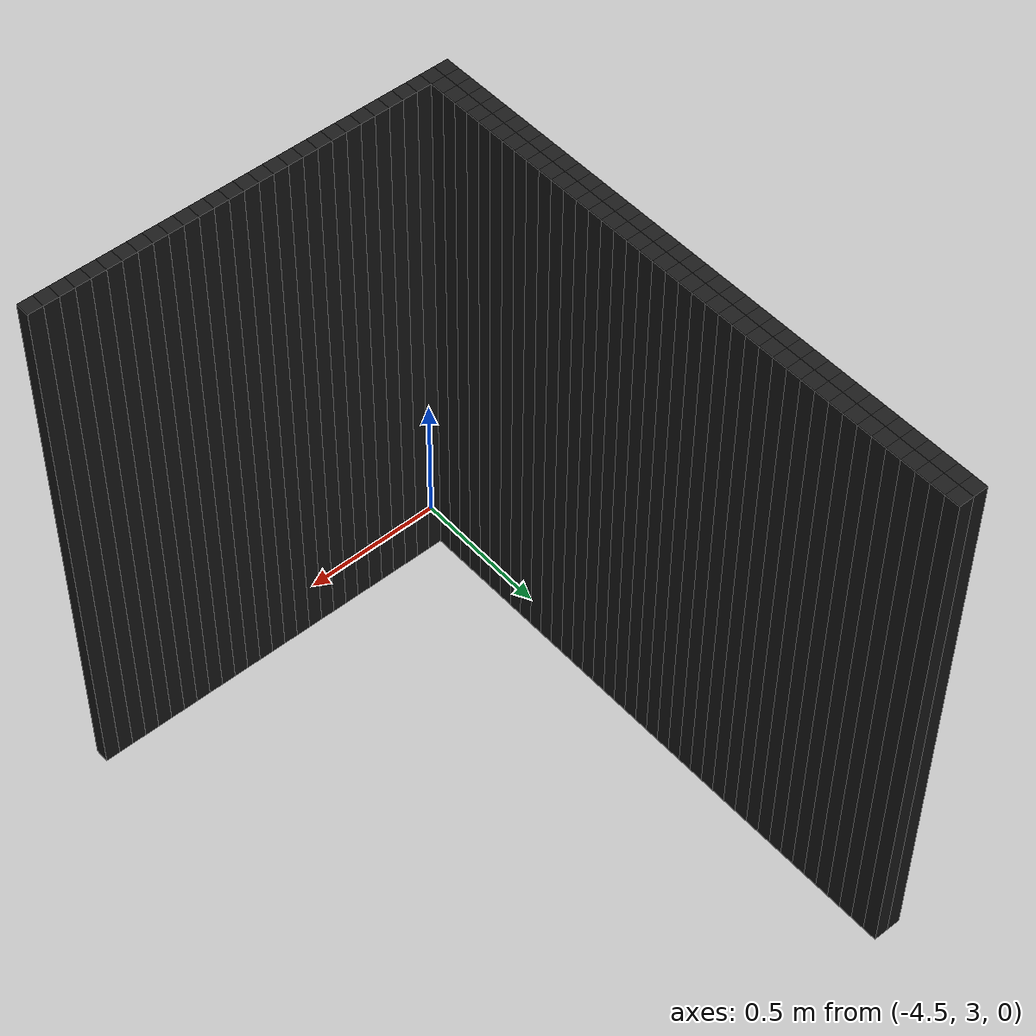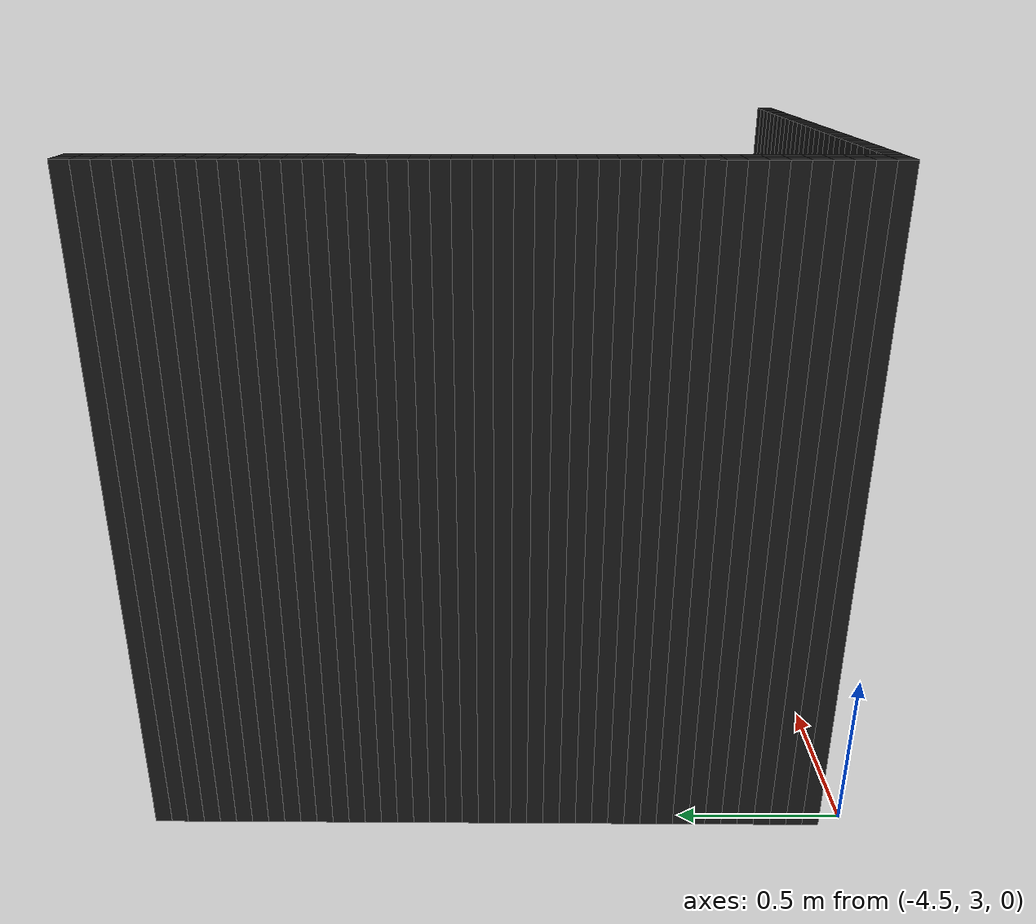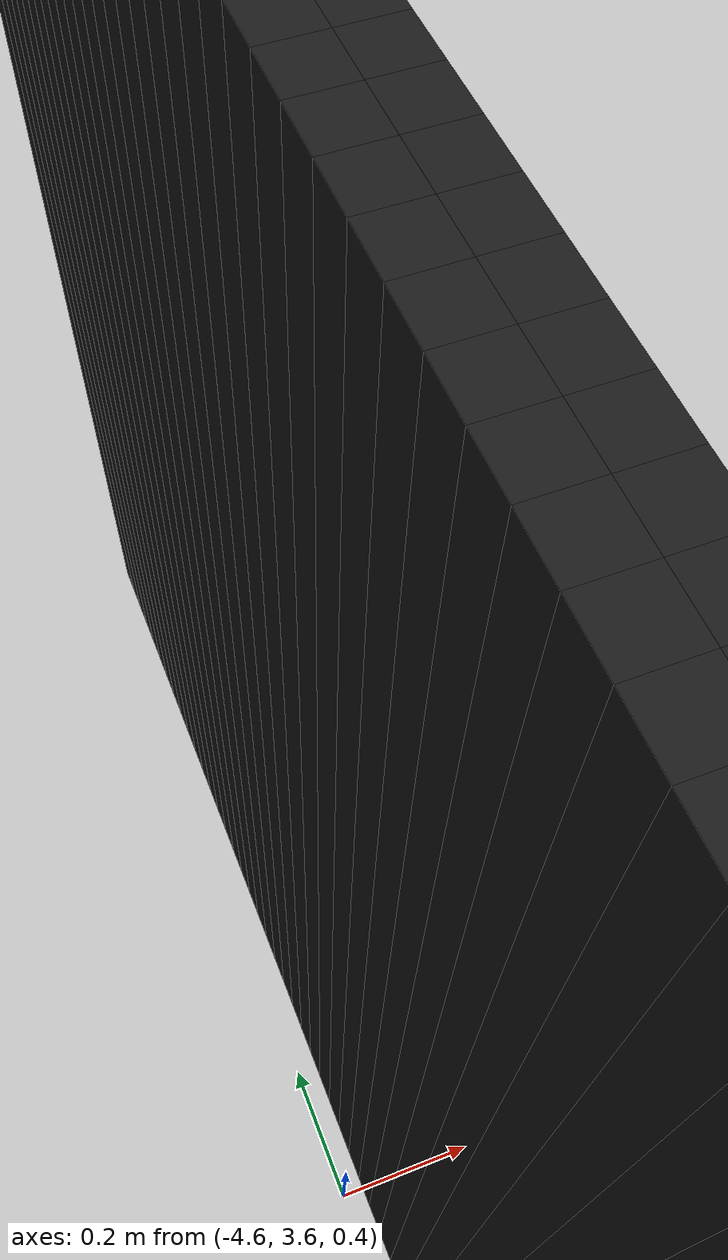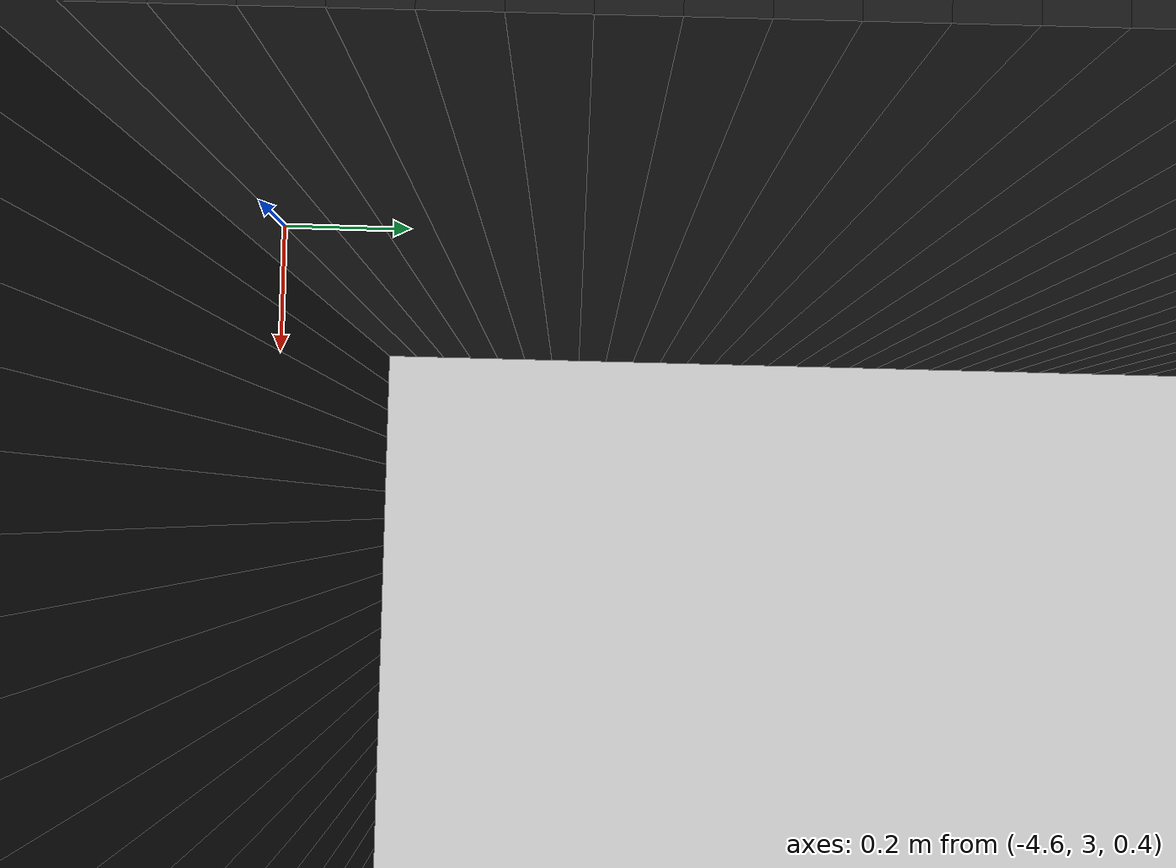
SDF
<sdf version="1.6">
 <model name="obstacle_0_65">
  <pose>-4.51 5.1000000000000005 1.0 0 0 0</pose>
  <static>true</static>
  <link name="box_link">
   <collision name="box_collision"><geometry><box><size>0.05 0.05 2.0</size></box></geometry></collision>
   <visual name="box_visual">
    <geometry><box><size>0.05 0.05 2.0</size></box></geometry>
    <material><ambient>0 0 0 1</ambient><diffuse>0.1 0.1 0.1 1</diffuse></material>
   </visual>
  </link>
 </model>
 <model name="obstacle_1_65">
  <pose>-4.46 5.1000000000000005 1.0 0 0 0</pose>
  <static>true</static>
  <link name="box_link">
   <collision name="box_collision"><geometry><box><size>0.05 0.05 2.0</size></box></geometry></collision>
   <visual name="box_visual">
    <geometry><box><size>0.05 0.05 2.0</size></box></geometry>
    <material><ambient>0 0 0 1</ambient><diffuse>0.1 0.1 0.1 1</diffuse></material>
   </visual>
  </link>
 </model>
 <model name="obstacle_0_66">
  <pose>-4.51 5.05 1.0 0 0 0</pose>
  <static>true</static>
  <link name="box_link">
   <collision name="box_collision"><geometry><box><size>0.05 0.05 2.0</size></box></geometry></collision>
   <visual name="box_visual">
    <geometry><box><size>0.05 0.05 2.0</size></box></geometry>
    <material><ambient>0 0 0 1</ambient><diffuse>0.1 0.1 0.1 1</diffuse></material>
   </visual>
  </link>
 </model>
 <model name="obstacle_1_66">
  <pose>-4.46 5.05 1.0 0 0 0</pose>
  <static>true</static>
  <link name="box_link">
   <collision name="box_collision"><geometry><box><size>0.05 0.05 2.0</size></box></geometry></collision>
   <visual name="box_visual">
    <geometry><box><size>0.05 0.05 2.0</size></box></geometry>
    <material><ambient>0 0 0 1</ambient><diffuse>0.1 0.1 0.1 1</diffuse></material>
   </visual>
  </link>
 </model>
 <model name="obstacle_0_67">
  <pose>-4.51 5.0 1.0 0 0 0</pose>
  <static>true</static>
  <link name="box_link">
   <collision name="box_collision"><geometry><box><size>0.05 0.05 2.0</size></box></geometry></collision>
   <visual name="box_visual">
    <geometry><box><size>0.05 0.05 2.0</size></box></geometry>
    <material><ambient>0 0 0 1</ambient><diffuse>0.1 0.1 0.1 1</diffuse></material>
   </visual>
  </link>
 </model>
 <model name="obstacle_1_67">
  <pose>-4.46 5.0 1.0 0 0 0</pose>
  <static>true</static>
  <link name="box_link">
   <collision name="box_collision"><geometry><box><size>0.05 0.05 2.0</size></box></geometry></collision>
   <visual name="box_visual">
    <geometry><box><size>0.05 0.05 2.0</size></box></geometry>
    <material><ambient>0 0 0 1</ambient><diffuse>0.1 0.1 0.1 1</diffuse></material>
   </visual>
  </link>
 </model>
 <model name="obstacle_0_68">
  <pose>-4.51 4.95 1.0 0 0 0</pose>
  <static>true</static>
  <link name="box_link">
   <collision name="box_collision"><geometry><box><size>0.05 0.05 2.0</size></box></geometry></collision>
   <visual name="box_visual">
    <geometry><box><size>0.05 0.05 2.0</size></box></geometry>
    <material><ambient>0 0 0 1</ambient><diffuse>0.1 0.1 0.1 1</diffuse></material>
   </visual>
  </link>
 </model>
 <model name="obstacle_1_68">
  <pose>-4.46 4.95 1.0 0 0 0</pose>
  <static>true</static>
  <link name="box_link">
   <collision name="box_collision"><geometry><box><size>0.05 0.05 2.0</size></box></geometry></collision>
   <visual name="box_visual">
    <geometry><box><size>0.05 0.05 2.0</size></box></geometry>
    <material><ambient>0 0 0 1</ambient><diffuse>0.1 0.1 0.1 1</diffuse></material>
   </visual>
  </link>
 </model>
 <model name="obstacle_0_69">
  <pose>-4.51 4.9 1.0 0 0 0</pose>
  <static>true</static>
  <link name="box_link">
   <collision name="box_collision"><geometry><box><size>0.05 0.05 2.0</size></box></geometry></collision>
   <visual name="box_visual">
    <geometry><box><size>0.05 0.05 2.0</size></box></geometry>
    <material><ambient>0 0 0 1</ambient><diffuse>0.1 0.1 0.1 1</diffuse></material>
   </visual>
  </link>
 </model>
 <model name="obstacle_1_69">
  <pose>-4.46 4.9 1.0 0 0 0</pose>
  <static>true</static>
  <link name="box_link">
   <collision name="box_collision"><geometry><box><size>0.05 0.05 2.0</size></box></geometry></collision>
   <visual name="box_visual">
    <geometry><box><size>0.05 0.05 2.0</size></box></geometry>
    <material><ambient>0 0 0 1</ambient><diffuse>0.1 0.1 0.1 1</diffuse></material>
   </visual>
  </link>
 </model>
 <model name="obstacle_0_70">
  <pose>-4.51 4.8500000000000005 1.0 0 0 0</pose>
  <static>true</static>
  <link name="box_link">
   <collision name="box_collision"><geometry><box><size>0.05 0.05 2.0</size></box></geometry></collision>
   <visual name="box_visual">
    <geometry><box><size>0.05 0.05 2.0</size></box></geometry>
    <material><ambient>0 0 0 1</ambient><diffuse>0.1 0.1 0.1 1</diffuse></material>
   </visual>
  </link>
 </model>
 <model name="obstacle_1_70">
  <pose>-4.46 4.8500000000000005 1.0 0 0 0</pose>
  <static>true</static>
  <link name="box_link">
   <collision name="box_collision"><geometry><box><size>0.05 0.05 2.0</size></box></geometry></collision>
   <visual name="box_visual">
    <geometry><box><size>0.05 0.05 2.0</size></box></geometry>
    <material><ambient>0 0 0 1</ambient><diffuse>0.1 0.1 0.1 1</diffuse></material>
   </visual>
  </link>
 </model>
 <model name="obstacle_0_71">
  <pose>-4.51 4.8 1.0 0 0 0</pose>
  <static>true</static>
  <link name="box_link">
   <collision name="box_collision"><geometry><box><size>0.05 0.05 2.0</size></box></geometry></collision>
   <visual name="box_visual">
    <geometry><box><size>0.05 0.05 2.0</size></box></geometry>
    <material><ambient>0 0 0 1</ambient><diffuse>0.1 0.1 0.1 1</diffuse></material>
   </visual>
  </link>
 </model>
 <model name="obstacle_1_71">
  <pose>-4.46 4.8 1.0 0 0 0</pose>
  <static>true</static>
  <link name="box_link">
   <collision name="box_collision"><geometry><box><size>0.05 0.05 2.0</size></box></geometry></collision>
   <visual name="box_visual">
    <geometry><box><size>0.05 0.05 2.0</size></box></geometry>
    <material><ambient>0 0 0 1</ambient><diffuse>0.1 0.1 0.1 1</diffuse></material>
   </visual>
  </link>
 </model>
 <model name="obstacle_0_72">
  <pose>-4.51 4.75 1.0 0 0 0</pose>
  <static>true</static>
  <link name="box_link">
   <collision name="box_collision"><geometry><box><size>0.05 0.05 2.0</size></box></geometry></collision>
   <visual name="box_visual">
    <geometry><box><size>0.05 0.05 2.0</size></box></geometry>
    <material><ambient>0 0 0 1</ambient><diffuse>0.1 0.1 0.1 1</diffuse></material>
   </visual>
  </link>
 </model>
 <model name="obstacle_1_72">
  <pose>-4.46 4.75 1.0 0 0 0</pose>
  <static>true</static>
  <link name="box_link">
   <collision name="box_collision"><geometry><box><size>0.05 0.05 2.0</size></box></geometry></collision>
   <visual name="box_visual">
    <geometry><box><size>0.05 0.05 2.0</size></box></geometry>
    <material><ambient>0 0 0 1</ambient><diffuse>0.1 0.1 0.1 1</diffuse></material>
   </visual>
  </link>
 </model>
 <model name="obstacle_0_73">
  <pose>-4.51 4.7 1.0 0 0 0</pose>
  <static>true</static>
  <link name="box_link">
   <collision name="box_collision"><geometry><box><size>0.05 0.05 2.0</size></box></geometry></collision>
   <visual name="box_visual">
    <geometry><box><size>0.05 0.05 2.0</size></box></geometry>
    <material><ambient>0 0 0 1</ambient><diffuse>0.1 0.1 0.1 1</diffuse></material>
   </visual>
  </link>
 </model>
 <model name="obstacle_1_73">
  <pose>-4.46 4.7 1.0 0 0 0</pose>
  <static>true</static>
  <link name="box_link">
   <collision name="box_collision"><geometry><box><size>0.05 0.05 2.0</size></box></geometry></collision>
   <visual name="box_visual">
    <geometry><box><size>0.05 0.05 2.0</size></box></geometry>
    <material><ambient>0 0 0 1</ambient><diffuse>0.1 0.1 0.1 1</diffuse></material>
   </visual>
  </link>
 </model>
 <model name="obstacle_0_74">
  <pose>-4.51 4.65 1.0 0 0 0</pose>
  <static>true</static>
  <link name="box_link">
   <collision name="box_collision"><geometry><box><size>0.05 0.05 2.0</size></box></geometry></collision>
   <visual name="box_visual">
    <geometry><box><size>0.05 0.05 2.0</size></box></geometry>
    <material><ambient>0 0 0 1</ambient><diffuse>0.1 0.1 0.1 1</diffuse></material>
   </visual>
  </link>
 </model>
 <model name="obstacle_1_74">
  <pose>-4.46 4.65 1.0 0 0 0</pose>
  <static>true</static>
  <link name="box_link">
   <collision name="box_collision"><geometry><box><size>0.05 0.05 2.0</size></box></geometry></collision>
   <visual name="box_visual">
    <geometry><box><size>0.05 0.05 2.0</size></box></geometry>
    <material><ambient>0 0 0 1</ambient><diffuse>0.1 0.1 0.1 1</diffuse></material>
   </visual>
  </link>
 </model>
 <model name="obstacle_0_75">
  <pose>-4.51 4.6000000000000005 1.0 0 0 0</pose>
  <static>true</static>
  <link name="box_link">
   <collision name="box_collision"><geometry><box><size>0.05 0.05 2.0</size></box></geometry></collision>
   <visual name="box_visual">
    <geometry><box><size>0.05 0.05 2.0</size></box></geometry>
    <material><ambient>0 0 0 1</ambient><diffuse>0.1 0.1 0.1 1</diffuse></material>
   </visual>
  </link>
 </model>
 <model name="obstacle_1_75">
  <pose>-4.46 4.6000000000000005 1.0 0 0 0</pose>
  <static>true</static>
  <link name="box_link">
   <collision name="box_collision"><geometry><box><size>0.05 0.05 2.0</size></box></geometry></collision>
   <visual name="box_visual">
    <geometry><box><size>0.05 0.05 2.0</size></box></geometry>
    <material><ambient>0 0 0 1</ambient><diffuse>0.1 0.1 0.1 1</diffuse></material>
   </visual>
  </link>
 </model>
 <model name="obstacle_0_76">
  <pose>-4.51 4.55 1.0 0 0 0</pose>
  <static>true</static>
  <link name="box_link">
   <collision name="box_collision"><geometry><box><size>0.05 0.05 2.0</size></box></geometry></collision>
   <visual name="box_visual">
    <geometry><box><size>0.05 0.05 2.0</size></box></geometry>
    <material><ambient>0 0 0 1</ambient><diffuse>0.1 0.1 0.1 1</diffuse></material>
   </visual>
  </link>
 </model>
 <model name="obstacle_1_76">
  <pose>-4.46 4.55 1.0 0 0 0</pose>
  <static>true</static>
  <link name="box_link">
   <collision name="box_collision"><geometry><box><size>0.05 0.05 2.0</size></box></geometry></collision>
   <visual name="box_visual">
    <geometry><box><size>0.05 0.05 2.0</size></box></geometry>
    <material><ambient>0 0 0 1</ambient><diffuse>0.1 0.1 0.1 1</diffuse></material>
   </visual>
  </link>
 </model>
 <model name="obstacle_0_77">
  <pose>-4.51 4.5 1.0 0 0 0</pose>
  <static>true</static>
  <link name="box_link">
   <collision name="box_collision"><geometry><box><size>0.05 0.05 2.0</size></box></geometry></collision>
   <visual name="box_visual">
    <geometry><box><size>0.05 0.05 2.0</size></box></geometry>
    <material><ambient>0 0 0 1</ambient><diffuse>0.1 0.1 0.1 1</diffuse></material>
   </visual>
  </link>
 </model>
 <model name="obstacle_1_77">
  <pose>-4.46 4.5 1.0 0 0 0</pose>
  <static>true</static>
  <link name="box_link">
   <collision name="box_collision"><geometry><box><size>0.05 0.05 2.0</size></box></geometry></collision>
   <visual name="box_visual">
    <geometry><box><size>0.05 0.05 2.0</size></box></geometry>
    <material><ambient>0 0 0 1</ambient><diffuse>0.1 0.1 0.1 1</diffuse></material>
   </visual>
  </link>
 </model>
 <model name="obstacle_0_78">
  <pose>-4.51 4.45 1.0 0 0 0</pose>
  <static>true</static>
  <link name="box_link">
   <collision name="box_collision"><geometry><box><size>0.05 0.05 2.0</size></box></geometry></collision>
   <visual name="box_visual">
    <geometry><box><size>0.05 0.05 2.0</size></box></geometry>
    <material><ambient>0 0 0 1</ambient><diffuse>0.1 0.1 0.1 1</diffuse></material>
   </visual>
  </link>
 </model>
 <model name="obstacle_1_78">
  <pose>-4.46 4.45 1.0 0 0 0</pose>
  <static>true</static>
  <link name="box_link">
   <collision name="box_collision"><geometry><box><size>0.05 0.05 2.0</size></box></geometry></collision>
   <visual name="box_visual">
    <geometry><box><size>0.05 0.05 2.0</size></box></geometry>
    <material><ambient>0 0 0 1</ambient><diffuse>0.1 0.1 0.1 1</diffuse></material>
   </visual>
  </link>
 </model>
 <model name="obstacle_0_79">
  <pose>-4.51 4.4 1.0 0 0 0</pose>
  <static>true</static>
  <link name="box_link">
   <collision name="box_collision"><geometry><box><size>0.05 0.05 2.0</size></box></geometry></collision>
   <visual name="box_visual">
    <geometry><box><size>0.05 0.05 2.0</size></box></geometry>
    <material><ambient>0 0 0 1</ambient><diffuse>0.1 0.1 0.1 1</diffuse></material>
   </visual>
  </link>
 </model>
 <model name="obstacle_1_79">
  <pose>-4.46 4.4 1.0 0 0 0</pose>
  <static>true</static>
  <link name="box_link">
   <collision name="box_collision"><geometry><box><size>0.05 0.05 2.0</size></box></geometry></collision>
   <visual name="box_visual">
    <geometry><box><size>0.05 0.05 2.0</size></box></geometry>
    <material><ambient>0 0 0 1</ambient><diffuse>0.1 0.1 0.1 1</diffuse></material>
   </visual>
  </link>
 </model>
 <model name="obstacle_0_80">
  <pose>-4.51 4.3500000000000005 1.0 0 0 0</pose>
  <static>true</static>
  <link name="box_link">
   <collision name="box_collision"><geometry><box><size>0.05 0.05 2.0</size></box></geometry></collision>
   <visual name="box_visual">
    <geometry><box><size>0.05 0.05 2.0</size></box></geometry>
    <material><ambient>0 0 0 1</ambient><diffuse>0.1 0.1 0.1 1</diffuse></material>
   </visual>
  </link>
 </model>
 <model name="obstacle_1_80">
  <pose>-4.46 4.3500000000000005 1.0 0 0 0</pose>
  <static>true</static>
  <link name="box_link">
   <collision name="box_collision"><geometry><box><size>0.05 0.05 2.0</size></box></geometry></collision>
   <visual name="box_visual">
    <geometry><box><size>0.05 0.05 2.0</size></box></geometry>
    <material><ambient>0 0 0 1</ambient><diffuse>0.1 0.1 0.1 1</diffuse></material>
   </visual>
  </link>
 </model>
 <model name="obstacle_0_81">
  <pose>-4.51 4.3 1.0 0 0 0</pose>
  <static>true</static>
  <link name="box_link">
   <collision name="box_collision"><geometry><box><size>0.05 0.05 2.0</size></box></geometry></collision>
   <visual name="box_visual">
    <geometry><box><size>0.05 0.05 2.0</size></box></geometry>
    <material><ambient>0 0 0 1</ambient><diffuse>0.1 0.1 0.1 1</diffuse></material>
   </visual>
  </link>
 </model>
 <model name="obstacle_1_81">
  <pose>-4.46 4.3 1.0 0 0 0</pose>
  <static>true</static>
  <link name="box_link">
   <collision name="box_collision"><geometry><box><size>0.05 0.05 2.0</size></box></geometry></collision>
   <visual name="box_visual">
    <geometry><box><size>0.05 0.05 2.0</size></box></geometry>
    <material><ambient>0 0 0 1</ambient><diffuse>0.1 0.1 0.1 1</diffuse></material>
   </visual>
  </link>
 </model>
 <model name="obstacle_0_82">
  <pose>-4.51 4.25 1.0 0 0 0</pose>
  <static>true</static>
  <link name="box_link">
   <collision name="box_collision"><geometry><box><size>0.05 0.05 2.0</size></box></geometry></collision>
   <visual name="box_visual">
    <geometry><box><size>0.05 0.05 2.0</size></box></geometry>
    <material><ambient>0 0 0 1</ambient><diffuse>0.1 0.1 0.1 1</diffuse></material>
   </visual>
  </link>
 </model>
 <model name="obstacle_1_82">
  <pose>-4.46 4.25 1.0 0 0 0</pose>
  <static>true</static>
  <link name="box_link">
   <collision name="box_collision"><geometry><box><size>0.05 0.05 2.0</size></box></geometry></collision>
   <visual name="box_visual">
    <geometry><box><size>0.05 0.05 2.0</size></box></geometry>
    <material><ambient>0 0 0 1</ambient><diffuse>0.1 0.1 0.1 1</diffuse></material>
   </visual>
  </link>
 </model>
 <model name="obstacle_0_83">
  <pose>-4.51 4.2 1.0 0 0 0</pose>
  <static>true</static>
  <link name="box_link">
   <collision name="box_collision"><geometry><box><size>0.05 0.05 2.0</size></box></geometry></collision>
   <visual name="box_visual">
    <geometry><box><size>0.05 0.05 2.0</size></box></geometry>
    <material><ambient>0 0 0 1</ambient><diffuse>0.1 0.1 0.1 1</diffuse></material>
   </visual>
  </link>
 </model>
 <model name="obstacle_1_83">
  <pose>-4.46 4.2 1.0 0 0 0</pose>
  <static>true</static>
  <link name="box_link">
   <collision name="box_collision"><geometry><box><size>0.05 0.05 2.0</size></box></geometry></collision>
   <visual name="box_visual">
    <geometry><box><size>0.05 0.05 2.0</size></box></geometry>
    <material><ambient>0 0 0 1</ambient><diffuse>0.1 0.1 0.1 1</diffuse></material>
   </visual>
  </link>
 </model>
 <model name="obstacle_0_84">
  <pose>-4.51 4.15 1.0 0 0 0</pose>
  <static>true</static>
  <link name="box_link">
   <collision name="box_collision"><geometry><box><size>0.05 0.05 2.0</size></box></geometry></collision>
   <visual name="box_visual">
    <geometry><box><size>0.05 0.05 2.0</size></box></geometry>
    <material><ambient>0 0 0 1</ambient><diffuse>0.1 0.1 0.1 1</diffuse></material>
   </visual>
  </link>
 </model>
 <model name="obstacle_1_84">
  <pose>-4.46 4.15 1.0 0 0 0</pose>
  <static>true</static>
  <link name="box_link">
   <collision name="box_collision"><geometry><box><size>0.05 0.05 2.0</size></box></geometry></collision>
   <visual name="box_visual">
    <geometry><box><size>0.05 0.05 2.0</size></box></geometry>
    <material><ambient>0 0 0 1</ambient><diffuse>0.1 0.1 0.1 1</diffuse></material>
   </visual>
  </link>
 </model>
 <model name="obstacle_0_85">
  <pose>-4.51 4.1000000000000005 1.0 0 0 0</pose>
  <static>true</static>
  <link name="box_link">
   <collision name="box_collision"><geometry><box><size>0.05 0.05 2.0</size></box></geometry></collision>
   <visual name="box_visual">
    <geometry><box><size>0.05 0.05 2.0</size></box></geometry>
    <material><ambient>0 0 0 1</ambient><diffuse>0.1 0.1 0.1 1</diffuse></material>
   </visual>
  </link>
 </model>
 <model name="obstacle_1_85">
  <pose>-4.46 4.1000000000000005 1.0 0 0 0</pose>
  <static>true</static>
  <link name="box_link">
   <collision name="box_collision"><geometry><box><size>0.05 0.05 2.0</size></box></geometry></collision>
   <visual name="box_visual">
    <geometry><box><size>0.05 0.05 2.0</size></box></geometry>
    <material><ambient>0 0 0 1</ambient><diffuse>0.1 0.1 0.1 1</diffuse></material>
   </visual>
  </link>
 </model>
 <model name="obstacle_0_86">
  <pose>-4.51 4.05 1.0 0 0 0</pose>
  <static>true</static>
  <link name="box_link">
   <collision name="box_collision"><geometry><box><size>0.05 0.05 2.0</size></box></geometry></collision>
   <visual name="box_visual">
    <geometry><box><size>0.05 0.05 2.0</size></box></geometry>
    <material><ambient>0 0 0 1</ambient><diffuse>0.1 0.1 0.1 1</diffuse></material>
   </visual>
  </link>
 </model>
 <model name="obstacle_1_86">
  <pose>-4.46 4.05 1.0 0 0 0</pose>
  <static>true</static>
  <link name="box_link">
   <collision name="box_collision"><geometry><box><size>0.05 0.05 2.0</size></box></geometry></collision>
   <visual name="box_visual">
    <geometry><box><size>0.05 0.05 2.0</size></box></geometry>
    <material><ambient>0 0 0 1</ambient><diffuse>0.1 0.1 0.1 1</diffuse></material>
   </visual>
  </link>
 </model>
 <model name="obstacle_0_87">
  <pose>-4.51 4.0 1.0 0 0 0</pose>
  <static>true</static>
  <link name="box_link">
   <collision name="box_collision"><geometry><box><size>0.05 0.05 2.0</size></box></geometry></collision>
   <visual name="box_visual">
    <geometry><box><size>0.05 0.05 2.0</size></box></geometry>
    <material><ambient>0 0 0 1</ambient><diffuse>0.1 0.1 0.1 1</diffuse></material>
   </visual>
  </link>
 </model>
 <model name="obstacle_1_87">
  <pose>-4.46 4.0 1.0 0 0 0</pose>
  <static>true</static>
  <link name="box_link">
   <collision name="box_collision"><geometry><box><size>0.05 0.05 2.0</size></box></geometry></collision>
   <visual name="box_visual">
    <geometry><box><size>0.05 0.05 2.0</size></box></geometry>
    <material><ambient>0 0 0 1</ambient><diffuse>0.1 0.1 0.1 1</diffuse></material>
   </visual>
  </link>
 </model>
 <model name="obstacle_0_88">
  <pose>-4.51 3.95 1.0 0 0 0</pose>
  <static>true</static>
  <link name="box_link">
   <collision name="box_collision"><geometry><box><size>0.05 0.05 2.0</size></box></geometry></collision>
   <visual name="box_visual">
    <geometry><box><size>0.05 0.05 2.0</size></box></geometry>
    <material><ambient>0 0 0 1</ambient><diffuse>0.1 0.1 0.1 1</diffuse></material>
   </visual>
  </link>
 </model>
 <model name="obstacle_1_88">
  <pose>-4.46 3.95 1.0 0 0 0</pose>
  <static>true</static>
  <link name="box_link">
   <collision name="box_collision"><geometry><box><size>0.05 0.05 2.0</size></box></geometry></collision>
   <visual name="box_visual">
    <geometry><box><size>0.05 0.05 2.0</size></box></geometry>
    <material><ambient>0 0 0 1</ambient><diffuse>0.1 0.1 0.1 1</diffuse></material>
   </visual>
  </link>
 </model>
 <model name="obstacle_0_89">
  <pose>-4.51 3.9000000000000004 1.0 0 0 0</pose>
  <static>true</static>
  <link name="box_link">
   <collision name="box_collision"><geometry><box><size>0.05 0.05 2.0</size></box></geometry></collision>
   <visual name="box_visual">
    <geometry><box><size>0.05 0.05 2.0</size></box></geometry>
    <material><ambient>0 0 0 1</ambient><diffuse>0.1 0.1 0.1 1</diffuse></material>
   </visual>
  </link>
 </model>
 <model name="obstacle_1_89">
  <pose>-4.46 3.9000000000000004 1.0 0 0 0</pose>
  <static>true</static>
  <link name="box_link">
   <collision name="box_collision"><geometry><box><size>0.05 0.05 2.0</size></box></geometry></collision>
   <visual name="box_visual">
    <geometry><box><size>0.05 0.05 2.0</size></box></geometry>
    <material><ambient>0 0 0 1</ambient><diffuse>0.1 0.1 0.1 1</diffuse></material>
   </visual>
  </link>
 </model>
 <model name="obstacle_0_90">
  <pose>-4.51 3.8500000000000005 1.0 0 0 0</pose>
  <static>true</static>
  <link name="box_link">
   <collision name="box_collision"><geometry><box><size>0.05 0.05 2.0</size></box></geometry></collision>
   <visual name="box_visual">
    <geometry><box><size>0.05 0.05 2.0</size></box></geometry>
    <material><ambient>0 0 0 1</ambient><diffuse>0.1 0.1 0.1 1</diffuse></material>
   </visual>
  </link>
 </model>
 <model name="obstacle_1_90">
  <pose>-4.46 3.8500000000000005 1.0 0 0 0</pose>
  <static>true</static>
  <link name="box_link">
   <collision name="box_collision"><geometry><box><size>0.05 0.05 2.0</size></box></geometry></collision>
   <visual name="box_visual">
    <geometry><box><size>0.05 0.05 2.0</size></box></geometry>
    <material><ambient>0 0 0 1</ambient><diffuse>0.1 0.1 0.1 1</diffuse></material>
   </visual>
  </link>
 </model>
 <model name="obstacle_0_91">
  <pose>-4.51 3.8 1.0 0 0 0</pose>
  <static>true</static>
  <link name="box_link">
   <collision name="box_collision"><geometry><box><size>0.05 0.05 2.0</size></box></geometry></collision>
   <visual name="box_visual">
    <geometry><box><size>0.05 0.05 2.0</size></box></geometry>
    <material><ambient>0 0 0 1</ambient><diffuse>0.1 0.1 0.1 1</diffuse></material>
   </visual>
  </link>
 </model>
 <model name="obstacle_1_91">
  <pose>-4.46 3.8 1.0 0 0 0</pose>
  <static>true</static>
  <link name="box_link">
   <collision name="box_collision"><geometry><box><size>0.05 0.05 2.0</size></box></geometry></collision>
   <visual name="box_visual">
    <geometry><box><size>0.05 0.05 2.0</size></box></geometry>
    <material><ambient>0 0 0 1</ambient><diffuse>0.1 0.1 0.1 1</diffuse></material>
   </visual>
  </link>
 </model>
 <model name="obstacle_0_92">
  <pose>-4.51 3.75 1.0 0 0 0</pose>
  <static>true</static>
  <link name="box_link">
   <collision name="box_collision"><geometry><box><size>0.05 0.05 2.0</size></box></geometry></collision>
   <visual name="box_visual">
    <geometry><box><size>0.05 0.05 2.0</size></box></geometry>
    <material><ambient>0 0 0 1</ambient><diffuse>0.1 0.1 0.1 1</diffuse></material>
   </visual>
  </link>
 </model>
 <model name="obstacle_1_92">
  <pose>-4.46 3.75 1.0 0 0 0</pose>
  <static>true</static>
  <link name="box_link">
   <collision name="box_collision"><geometry><box><size>0.05 0.05 2.0</size></box></geometry></collision>
   <visual name="box_visual">
    <geometry><box><size>0.05 0.05 2.0</size></box></geometry>
    <material><ambient>0 0 0 1</ambient><diffuse>0.1 0.1 0.1 1</diffuse></material>
   </visual>
  </link>
 </model>
 <model name="obstacle_0_93">
  <pose>-4.51 3.7 1.0 0 0 0</pose>
  <static>true</static>
  <link name="box_link">
   <collision name="box_collision"><geometry><box><size>0.05 0.05 2.0</size></box></geometry></collision>
   <visual name="box_visual">
    <geometry><box><size>0.05 0.05 2.0</size></box></geometry>
    <material><ambient>0 0 0 1</ambient><diffuse>0.1 0.1 0.1 1</diffuse></material>
   </visual>
  </link>
 </model>
 <model name="obstacle_1_93">
  <pose>-4.46 3.7 1.0 0 0 0</pose>
  <static>true</static>
  <link name="box_link">
   <collision name="box_collision"><geometry><box><size>0.05 0.05 2.0</size></box></geometry></collision>
   <visual name="box_visual">
    <geometry><box><size>0.05 0.05 2.0</size></box></geometry>
    <material><ambient>0 0 0 1</ambient><diffuse>0.1 0.1 0.1 1</diffuse></material>
   </visual>
  </link>
 </model>
 <model name="obstacle_0_94">
  <pose>-4.51 3.6500000000000004 1.0 0 0 0</pose>
  <static>true</static>
  <link name="box_link">
   <collision name="box_collision"><geometry><box><size>0.05 0.05 2.0</size></box></geometry></collision>
   <visual name="box_visual">
    <geometry><box><size>0.05 0.05 2.0</size></box></geometry>
    <material><ambient>0 0 0 1</ambient><diffuse>0.1 0.1 0.1 1</diffuse></material>
   </visual>
  </link>
 </model>
 <model name="obstacle_1_94">
  <pose>-4.46 3.6500000000000004 1.0 0 0 0</pose>
  <static>true</static>
  <link name="box_link">
   <collision name="box_collision"><geometry><box><size>0.05 0.05 2.0</size></box></geometry></collision>
   <visual name="box_visual">
    <geometry><box><size>0.05 0.05 2.0</size></box></geometry>
    <material><ambient>0 0 0 1</ambient><diffuse>0.1 0.1 0.1 1</diffuse></material>
   </visual>
  </link>
 </model>
 <model name="obstacle_0_95">
  <pose>-4.51 3.6000000000000005 1.0 0 0 0</pose>
  <static>true</static>
  <link name="box_link">
   <collision name="box_collision"><geometry><box><size>0.05 0.05 2.0</size></box></geometry></collision>
   <visual name="box_visual">
    <geometry><box><size>0.05 0.05 2.0</size></box></geometry>
    <material><ambient>0 0 0 1</ambient><diffuse>0.1 0.1 0.1 1</diffuse></material>
   </visual>
  </link>
 </model>
 <model name="obstacle_1_95">
  <pose>-4.46 3.6000000000000005 1.0 0 0 0</pose>
  <static>true</static>
  <link name="box_link">
   <collision name="box_collision"><geometry><box><size>0.05 0.05 2.0</size></box></geometry></collision>
   <visual name="box_visual">
    <geometry><box><size>0.05 0.05 2.0</size></box></geometry>
    <material><ambient>0 0 0 1</ambient><diffuse>0.1 0.1 0.1 1</diffuse></material>
   </visual>
  </link>
 </model>
 <model name="obstacle_0_96">
  <pose>-4.51 3.55 1.0 0 0 0</pose>
  <static>true</static>
  <link name="box_link">
   <collision name="box_collision"><geometry><box><size>0.05 0.05 2.0</size></box></geometry></collision>
   <visual name="box_visual">
    <geometry><box><size>0.05 0.05 2.0</size></box></geometry>
    <material><ambient>0 0 0 1</ambient><diffuse>0.1 0.1 0.1 1</diffuse></material>
   </visual>
  </link>
 </model>
 <model name="obstacle_1_96">
  <pose>-4.46 3.55 1.0 0 0 0</pose>
  <static>true</static>
  <link name="box_link">
   <collision name="box_collision"><geometry><box><size>0.05 0.05 2.0</size></box></geometry></collision>
   <visual name="box_visual">
    <geometry><box><size>0.05 0.05 2.0</size></box></geometry>
    <material><ambient>0 0 0 1</ambient><diffuse>0.1 0.1 0.1 1</diffuse></material>
   </visual>
  </link>
 </model>
 <model name="obstacle_0_97">
  <pose>-4.51 3.5 1.0 0 0 0</pose>
  <static>true</static>
  <link name="box_link">
   <collision name="box_collision"><geometry><box><size>0.05 0.05 2.0</size></box></geometry></collision>
   <visual name="box_visual">
    <geometry><box><size>0.05 0.05 2.0</size></box></geometry>
    <material><ambient>0 0 0 1</ambient><diffuse>0.1 0.1 0.1 1</diffuse></material>
   </visual>
  </link>
 </model>
 <model name="obstacle_1_97">
  <pose>-4.46 3.5 1.0 0 0 0</pose>
  <static>true</static>
  <link name="box_link">
   <collision name="box_collision"><geometry><box><size>0.05 0.05 2.0</size></box></geometry></collision>
   <visual name="box_visual">
    <geometry><box><size>0.05 0.05 2.0</size></box></geometry>
    <material><ambient>0 0 0 1</ambient><diffuse>0.1 0.1 0.1 1</diffuse></material>
   </visual>
  </link>
 </model>
 <model name="obstacle_0_98">
  <pose>-4.51 3.45 1.0 0 0 0</pose>
  <static>true</static>
  <link name="box_link">
   <collision name="box_collision"><geometry><box><size>0.05 0.05 2.0</size></box></geometry></collision>
   <visual name="box_visual">
    <geometry><box><size>0.05 0.05 2.0</size></box></geometry>
    <material><ambient>0 0 0 1</ambient><diffuse>0.1 0.1 0.1 1</diffuse></material>
   </visual>
  </link>
 </model>
 <model name="obstacle_1_98">
  <pose>-4.46 3.45 1.0 0 0 0</pose>
  <static>true</static>
  <link name="box_link">
   <collision name="box_collision"><geometry><box><size>0.05 0.05 2.0</size></box></geometry></collision>
   <visual name="box_visual">
    <geometry><box><size>0.05 0.05 2.0</size></box></geometry>
    <material><ambient>0 0 0 1</ambient><diffuse>0.1 0.1 0.1 1</diffuse></material>
   </visual>
  </link>
 </model>
 <model name="obstacle_0_99">
  <pose>-4.51 3.4000000000000004 1.0 0 0 0</pose>
  <static>true</static>
  <link name="box_link">
   <collision name="box_collision"><geometry><box><size>0.05 0.05 2.0</size></box></geometry></collision>
   <visual name="box_visual">
    <geometry><box><size>0.05 0.05 2.0</size></box></geometry>
    <material><ambient>0 0 0 1</ambient><diffuse>0.1 0.1 0.1 1</diffuse></material>
   </visual>
  </link>
 </model>
 <model name="obstacle_1_99">
  <pose>-4.46 3.4000000000000004 1.0 0 0 0</pose>
  <static>true</static>
  <link name="box_link">
   <collision name="box_collision"><geometry><box><size>0.05 0.05 2.0</size></box></geometry></collision>
   <visual name="box_visual">
    <geometry><box><size>0.05 0.05 2.0</size></box></geometry>
    <material><ambient>0 0 0 1</ambient><diffuse>0.1 0.1 0.1 1</diffuse></material>
   </visual>
  </link>
 </model>
 <model name="obstacle_0_100">
  <pose>-4.51 3.3500000000000005 1.0 0 0 0</pose>
  <static>true</static>
  <link name="box_link">
   <collision name="box_collision"><geometry><box><size>0.05 0.05 2.0</size></box></geometry></collision>
   <visual name="box_visual">
    <geometry><box><size>0.05 0.05 2.0</size></box></geometry>
    <material><ambient>0 0 0 1</ambient><diffuse>0.1 0.1 0.1 1</diffuse></material>
   </visual>
  </link>
 </model>
 <model name="obstacle_1_100">
  <pose>-4.46 3.3500000000000005 1.0 0 0 0</pose>
  <static>true</static>
  <link name="box_link">
   <collision name="box_collision"><geometry><box><size>0.05 0.05 2.0</size></box></geometry></collision>
   <visual name="box_visual">
    <geometry><box><size>0.05 0.05 2.0</size></box></geometry>
    <material><ambient>0 0 0 1</ambient><diffuse>0.1 0.1 0.1 1</diffuse></material>
   </visual>
  </link>
 </model>
 <model name="obstacle_0_101">
  <pose>-4.51 3.3 1.0 0 0 0</pose>
  <static>true</static>
  <link name="box_link">
   <collision name="box_collision"><geometry><box><size>0.05 0.05 2.0</size></box></geometry></collision>
   <visual name="box_visual">
    <geometry><box><size>0.05 0.05 2.0</size></box></geometry>
    <material><ambient>0 0 0 1</ambient><diffuse>0.1 0.1 0.1 1</diffuse></material>
   </visual>
  </link>
 </model>
 <model name="obstacle_1_101">
  <pose>-4.46 3.3 1.0 0 0 0</pose>
  <static>true</static>
  <link name="box_link">
   <collision name="box_collision"><geometry><box><size>0.05 0.05 2.0</size></box></geometry></collision>
   <visual name="box_visual">
    <geometry><box><size>0.05 0.05 2.0</size></box></geometry>
    <material><ambient>0 0 0 1</ambient><diffuse>0.1 0.1 0.1 1</diffuse></material>
   </visual>
  </link>
 </model>
 <model name="obstacle_0_102">
  <pose>-4.51 3.25 1.0 0 0 0</pose>
  <static>true</static>
  <link name="box_link">
   <collision name="box_collision"><geometry><box><size>0.05 0.05 2.0</size></box></geometry></collision>
   <visual name="box_visual">
    <geometry><box><size>0.05 0.05 2.0</size></box></geometry>
    <material><ambient>0 0 0 1</ambient><diffuse>0.1 0.1 0.1 1</diffuse></material>
   </visual>
  </link>
 </model>
 <model name="obstacle_1_102">
  <pose>-4.46 3.25 1.0 0 0 0</pose>
  <static>true</static>
  <link name="box_link">
   <collision name="box_collision"><geometry><box><size>0.05 0.05 2.0</size></box></geometry></collision>
   <visual name="box_visual">
    <geometry><box><size>0.05 0.05 2.0</size></box></geometry>
    <material><ambient>0 0 0 1</ambient><diffuse>0.1 0.1 0.1 1</diffuse></material>
   </visual>
  </link>
 </model>
 <model name="obstacle_0_103">
  <pose>-4.51 3.2 1.0 0 0 0</pose>
  <static>true</static>
  <link name="box_link">
   <collision name="box_collision"><geometry><box><size>0.05 0.05 2.0</size></box></geometry></collision>
   <visual name="box_visual">
    <geometry><box><size>0.05 0.05 2.0</size></box></geometry>
    <material><ambient>0 0 0 1</ambient><diffuse>0.1 0.1 0.1 1</diffuse></material>
   </visual>
  </link>
 </model>
 <model name="obstacle_1_103">
  <pose>-4.46 3.2 1.0 0 0 0</pose>
  <static>true</static>
  <link name="box_link">
   <collision name="box_collision"><geometry><box><size>0.05 0.05 2.0</size></box></geometry></collision>
   <visual name="box_visual">
    <geometry><box><size>0.05 0.05 2.0</size></box></geometry>
    <material><ambient>0 0 0 1</ambient><diffuse>0.1 0.1 0.1 1</diffuse></material>
   </visual>
  </link>
 </model>
 <model name="obstacle_0_104">
  <pose>-4.51 3.1500000000000004 1.0 0 0 0</pose>
  <static>true</static>
  <link name="box_link">
   <collision name="box_collision"><geometry><box><size>0.05 0.05 2.0</size></box></geometry></collision>
   <visual name="box_visual">
    <geometry><box><size>0.05 0.05 2.0</size></box></geometry>
    <material><ambient>0 0 0 1</ambient><diffuse>0.1 0.1 0.1 1</diffuse></material>
   </visual>
  </link>
 </model>
 <model name="obstacle_1_104">
  <pose>-4.46 3.1500000000000004 1.0 0 0 0</pose>
  <static>true</static>
  <link name="box_link">
   <collision name="box_collision"><geometry><box><size>0.05 0.05 2.0</size></box></geometry></collision>
   <visual name="box_visual">
    <geometry><box><size>0.05 0.05 2.0</size></box></geometry>
    <material><ambient>0 0 0 1</ambient><diffuse>0.1 0.1 0.1 1</diffuse></material>
   </visual>
  </link>
 </model>
 <model name="obstacle_0_105">
  <pose>-4.51 3.1000000000000005 1.0 0 0 0</pose>
  <static>true</static>
  <link name="box_link">
   <collision name="box_collision"><geometry><box><size>0.05 0.05 2.0</size></box></geometry></collision>
   <visual name="box_visual">
    <geometry><box><size>0.05 0.05 2.0</size></box></geometry>
    <material><ambient>0 0 0 1</ambient><diffuse>0.1 0.1 0.1 1</diffuse></material>
   </visual>
  </link>
 </model>
 <model name="obstacle_1_105">
  <pose>-4.46 3.1000000000000005 1.0 0 0 0</pose>
  <static>true</static>
  <link name="box_link">
   <collision name="box_collision"><geometry><box><size>0.05 0.05 2.0</size></box></geometry></collision>
   <visual name="box_visual">
    <geometry><box><size>0.05 0.05 2.0</size></box></geometry>
    <material><ambient>0 0 0 1</ambient><diffuse>0.1 0.1 0.1 1</diffuse></material>
   </visual>
  </link>
 </model>
 <model name="obstacle_2_105">
  <pose>-4.41 3.1000000000000005 1.0 0 0 0</pose>
  <static>true</static>
  <link name="box_link">
   <collision name="box_collision"><geometry><box><size>0.05 0.05 2.0</size></box></geometry></collision>
   <visual name="box_visual">
    <geometry><box><size>0.05 0.05 2.0</size></box></geometry>
    <material><ambient>0 0 0 1</ambient><diffuse>0.1 0.1 0.1 1</diffuse></material>
   </visual>
  </link>
 </model>
 <model name="obstacle_3_105">
  <pose>-4.359999999999999 3.1000000000000005 1.0 0 0 0</pose>
  <static>true</static>
  <link name="box_link">
   <collision name="box_collision"><geometry><box><size>0.05 0.05 2.0</size></box></geometry></collision>
   <visual name="box_visual">
    <geometry><box><size>0.05 0.05 2.0</size></box></geometry>
    <material><ambient>0 0 0 1</ambient><diffuse>0.1 0.1 0.1 1</diffuse></material>
   </visual>
  </link>
 </model>
 <model name="obstacle_4_105">
  <pose>-4.31 3.1000000000000005 1.0 0 0 0</pose>
  <static>true</static>
  <link name="box_link">
   <collision name="box_collision"><geometry><box><size>0.05 0.05 2.0</size></box></geometry></collision>
   <visual name="box_visual">
    <geometry><box><size>0.05 0.05 2.0</size></box></geometry>
    <material><ambient>0 0 0 1</ambient><diffuse>0.1 0.1 0.1 1</diffuse></material>
   </visual>
  </link>
 </model>
 <model name="obstacle_5_105">
  <pose>-4.26 3.1000000000000005 1.0 0 0 0</pose>
  <static>true</static>
  <link name="box_link">
   <collision name="box_collision"><geometry><box><size>0.05 0.05 2.0</size></box></geometry></collision>
   <visual name="box_visual">
    <geometry><box><size>0.05 0.05 2.0</size></box></geometry>
    <material><ambient>0 0 0 1</ambient><diffuse>0.1 0.1 0.1 1</diffuse></material>
   </visual>
  </link>
 </model>
 <model name="obstacle_6_105">
  <pose>-4.21 3.1000000000000005 1.0 0 0 0</pose>
  <static>true</static>
  <link name="box_link">
   <collision name="box_collision"><geometry><box><size>0.05 0.05 2.0</size></box></geometry></collision>
   <visual name="box_visual">
    <geometry><box><size>0.05 0.05 2.0</size></box></geometry>
    <material><ambient>0 0 0 1</ambient><diffuse>0.1 0.1 0.1 1</diffuse></material>
   </visual>
  </link>
 </model>
 <model name="obstacle_7_105">
  <pose>-4.16 3.1000000000000005 1.0 0 0 0</pose>
  <static>true</static>
  <link name="box_link">
   <collision name="box_collision"><geometry><box><size>0.05 0.05 2.0</size></box></geometry></collision>
   <visual name="box_visual">
    <geometry><box><size>0.05 0.05 2.0</size></box></geometry>
    <material><ambient>0 0 0 1</ambient><diffuse>0.1 0.1 0.1 1</diffuse></material>
   </visual>
  </link>
 </model>
 <model name="obstacle_8_105">
  <pose>-4.109999999999999 3.1000000000000005 1.0 0 0 0</pose>
  <static>true</static>
  <link name="box_link">
   <collision name="box_collision"><geometry><box><size>0.05 0.05 2.0</size></box></geometry></collision>
   <visual name="box_visual">
    <geometry><box><size>0.05 0.05 2.0</size></box></geometry>
    <material><ambient>0 0 0 1</ambient><diffuse>0.1 0.1 0.1 1</diffuse></material>
   </visual>
  </link>
 </model>
 <model name="obstacle_9_105">
  <pose>-4.06 3.1000000000000005 1.0 0 0 0</pose>
  <static>true</static>
  <link name="box_link">
   <collision name="box_collision"><geometry><box><size>0.05 0.05 2.0</size></box></geometry></collision>
   <visual name="box_visual">
    <geometry><box><size>0.05 0.05 2.0</size></box></geometry>
    <material><ambient>0 0 0 1</ambient><diffuse>0.1 0.1 0.1 1</diffuse></material>
   </visual>
  </link>
 </model>
 <model name="obstacle_10_105">
  <pose>-4.01 3.1000000000000005 1.0 0 0 0</pose>
  <static>true</static>
  <link name="box_link">
   <collision name="box_collision"><geometry><box><size>0.05 0.05 2.0</size></box></geometry></collision>
   <visual name="box_visual">
    <geometry><box><size>0.05 0.05 2.0</size></box></geometry>
    <material><ambient>0 0 0 1</ambient><diffuse>0.1 0.1 0.1 1</diffuse></material>
   </visual>
  </link>
 </model>
 <model name="obstacle_11_105">
  <pose>-3.96 3.1000000000000005 1.0 0 0 0</pose>
  <static>true</static>
  <link name="box_link">
   <collision name="box_collision"><geometry><box><size>0.05 0.05 2.0</size></box></geometry></collision>
   <visual name="box_visual">
    <geometry><box><size>0.05 0.05 2.0</size></box></geometry>
    <material><ambient>0 0 0 1</ambient><diffuse>0.1 0.1 0.1 1</diffuse></material>
   </visual>
  </link>
 </model>
 <model name="obstacle_12_105">
  <pose>-3.9099999999999997 3.1000000000000005 1.0 0 0 0</pose>
  <static>true</static>
  <link name="box_link">
   <collision name="box_collision"><geometry><box><size>0.05 0.05 2.0</size></box></geometry></collision>
   <visual name="box_visual">
    <geometry><box><size>0.05 0.05 2.0</size></box></geometry>
    <material><ambient>0 0 0 1</ambient><diffuse>0.1 0.1 0.1 1</diffuse></material>
   </visual>
  </link>
 </model>
 <model name="obstacle_13_105">
  <pose>-3.86 3.1000000000000005 1.0 0 0 0</pose>
  <static>true</static>
  <link name="box_link">
   <collision name="box_collision"><geometry><box><size>0.05 0.05 2.0</size></box></geometry></collision>
   <visual name="box_visual">
    <geometry><box><size>0.05 0.05 2.0</size></box></geometry>
    <material><ambient>0 0 0 1</ambient><diffuse>0.1 0.1 0.1 1</diffuse></material>
   </visual>
  </link>
 </model>
 <model name="obstacle_14_105">
  <pose>-3.8099999999999996 3.1000000000000005 1.0 0 0 0</pose>
  <static>true</static>
  <link name="box_link">
   <collision name="box_collision"><geometry><box><size>0.05 0.05 2.0</size></box></geometry></collision>
   <visual name="box_visual">
    <geometry><box><size>0.05 0.05 2.0</size></box></geometry>
    <material><ambient>0 0 0 1</ambient><diffuse>0.1 0.1 0.1 1</diffuse></material>
   </visual>
  </link>
 </model>
 <model name="obstacle_15_105">
  <pose>-3.76 3.1000000000000005 1.0 0 0 0</pose>
  <static>true</static>
  <link name="box_link">
   <collision name="box_collision"><geometry><box><size>0.05 0.05 2.0</size></box></geometry></collision>
   <visual name="box_visual">
    <geometry><box><size>0.05 0.05 2.0</size></box></geometry>
    <material><ambient>0 0 0 1</ambient><diffuse>0.1 0.1 0.1 1</diffuse></material>
   </visual>
  </link>
 </model>
 <model name="obstacle_16_105">
  <pose>-3.71 3.1000000000000005 1.0 0 0 0</pose>
  <static>true</static>
  <link name="box_link">
   <collision name="box_collision"><geometry><box><size>0.05 0.05 2.0</size></box></geometry></collision>
   <visual name="box_visual">
    <geometry><box><size>0.05 0.05 2.0</size></box></geometry>
    <material><ambient>0 0 0 1</ambient><diffuse>0.1 0.1 0.1 1</diffuse></material>
   </visual>
  </link>
 </model>
 <model name="obstacle_17_105">
  <pose>-3.6599999999999997 3.1000000000000005 1.0 0 0 0</pose>
  <static>true</static>
  <link name="box_link">
   <collision name="box_collision"><geometry><box><size>0.05 0.05 2.0</size></box></geometry></collision>
   <visual name="box_visual">
    <geometry><box><size>0.05 0.05 2.0</size></box></geometry>
    <material><ambient>0 0 0 1</ambient><diffuse>0.1 0.1 0.1 1</diffuse></material>
   </visual>
  </link>
 </model>
 <model name="obstacle_18_105">
  <pose>-3.61 3.1000000000000005 1.0 0 0 0</pose>
  <static>true</static>
  <link name="box_link">
   <collision name="box_collision"><geometry><box><size>0.05 0.05 2.0</size></box></geometry></collision>
   <visual name="box_visual">
    <geometry><box><size>0.05 0.05 2.0</size></box></geometry>
    <material><ambient>0 0 0 1</ambient><diffuse>0.1 0.1 0.1 1</diffuse></material>
   </visual>
  </link>
 </model>
 <model name="obstacle_19_105">
  <pose>-3.5599999999999996 3.1000000000000005 1.0 0 0 0</pose>
  <static>true</static>
  <link name="box_link">
   <collision name="box_collision"><geometry><box><size>0.05 0.05 2.0</size></box></geometry></collision>
   <visual name="box_visual">
    <geometry><box><size>0.05 0.05 2.0</size></box></geometry>
    <material><ambient>0 0 0 1</ambient><diffuse>0.1 0.1 0.1 1</diffuse></material>
   </visual>
  </link>
 </model>
 <model name="obstacle_20_105">
  <pose>-3.51 3.1000000000000005 1.0 0 0 0</pose>
  <static>true</static>
  <link name="box_link">
   <collision name="box_collision"><geometry><box><size>0.05 0.05 2.0</size></box></geometry></collision>
   <visual name="box_visual">
    <geometry><box><size>0.05 0.05 2.0</size></box></geometry>
    <material><ambient>0 0 0 1</ambient><diffuse>0.1 0.1 0.1 1</diffuse></material>
   </visual>
  </link>
 </model>
 <model name="obstacle_21_105">
  <pose>-3.46 3.1000000000000005 1.0 0 0 0</pose>
  <static>true</static>
  <link name="box_link">
   <collision name="box_collision"><geometry><box><size>0.05 0.05 2.0</size></box></geometry></collision>
   <visual name="box_visual">
    <geometry><box><size>0.05 0.05 2.0</size></box></geometry>
    <material><ambient>0 0 0 1</ambient><diffuse>0.1 0.1 0.1 1</diffuse></material>
   </visual>
  </link>
 </model>
 <model name="obstacle_22_105">
  <pose>-3.4099999999999997 3.1000000000000005 1.0 0 0 0</pose>
  <static>true</static>
  <link name="box_link">
   <collision name="box_collision"><geometry><box><size>0.05 0.05 2.0</size></box></geometry></collision>
   <visual name="box_visual">
    <geometry><box><size>0.05 0.05 2.0</size></box></geometry>
    <material><ambient>0 0 0 1</ambient><diffuse>0.1 0.1 0.1 1</diffuse></material>
   </visual>
  </link>
 </model>
 <model name="obstacle_23_105">
  <pose>-3.3599999999999994 3.1000000000000005 1.0 0 0 0</pose>
  <static>true</static>
  <link name="box_link">
   <collision name="box_collision"><geometry><box><size>0.05 0.05 2.0</size></box></geometry></collision>
   <visual name="box_visual">
    <geometry><box><size>0.05 0.05 2.0</size></box></geometry>
    <material><ambient>0 0 0 1</ambient><diffuse>0.1 0.1 0.1 1</diffuse></material>
   </visual>
  </link>
 </model>
 <model name="obstacle_24_105">
  <pose>-3.3099999999999996 3.1000000000000005 1.0 0 0 0</pose>
  <static>true</static>
  <link name="box_link">
   <collision name="box_collision"><geometry><box><size>0.05 0.05 2.0</size></box></geometry></collision>
   <visual name="box_visual">
    <geometry><box><size>0.05 0.05 2.0</size></box></geometry>
    <material><ambient>0 0 0 1</ambient><diffuse>0.1 0.1 0.1 1</diffuse></material>
   </visual>
  </link>
 </model>
 <model name="obstacle_25_105">
  <pose>-3.26 3.1000000000000005 1.0 0 0 0</pose>
  <static>true</static>
  <link name="box_link">
   <collision name="box_collision"><geometry><box><size>0.05 0.05 2.0</size></box></geometry></collision>
   <visual name="box_visual">
    <geometry><box><size>0.05 0.05 2.0</size></box></geometry>
    <material><ambient>0 0 0 1</ambient><diffuse>0.1 0.1 0.1 1</diffuse></material>
   </visual>
  </link>
 </model>
 <model name="obstacle_26_105">
  <pose>-3.21 3.1000000000000005 1.0 0 0 0</pose>
  <static>true</static>
  <link name="box_link">
   <collision name="box_collision"><geometry><box><size>0.05 0.05 2.0</size></box></geometry></collision>
   <visual name="box_visual">
    <geometry><box><size>0.05 0.05 2.0</size></box></geometry>
    <material><ambient>0 0 0 1</ambient><diffuse>0.1 0.1 0.1 1</diffuse></material>
   </visual>
  </link>
 </model>
 <model name="obstacle_27_105">
  <pose>-3.1599999999999997 3.1000000000000005 1.0 0 0 0</pose>
  <static>true</static>
  <link name="box_link">
   <collision name="box_collision"><geometry><box><size>0.05 0.05 2.0</size></box></geometry></collision>
   <visual name="box_visual">
    <geometry><box><size>0.05 0.05 2.0</size></box></geometry>
    <material><ambient>0 0 0 1</ambient><diffuse>0.1 0.1 0.1 1</diffuse></material>
   </visual>
  </link>
 </model>
 <model name="obstacle_28_105">
  <pose>-3.1099999999999994 3.1000000000000005 1.0 0 0 0</pose>
  <static>true</static>
  <link name="box_link">
   <collision name="box_collision"><geometry><box><size>0.05 0.05 2.0</size></box></geometry></collision>
   <visual name="box_visual">
    <geometry><box><size>0.05 0.05 2.0</size></box></geometry>
    <material><ambient>0 0 0 1</ambient><diffuse>0.1 0.1 0.1 1</diffuse></material>
   </visual>
  </link>
 </model>
</sdf>
